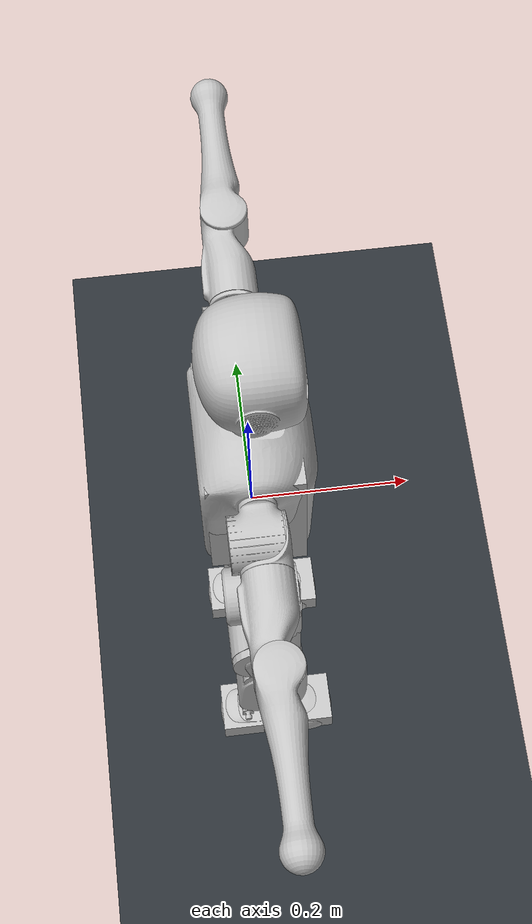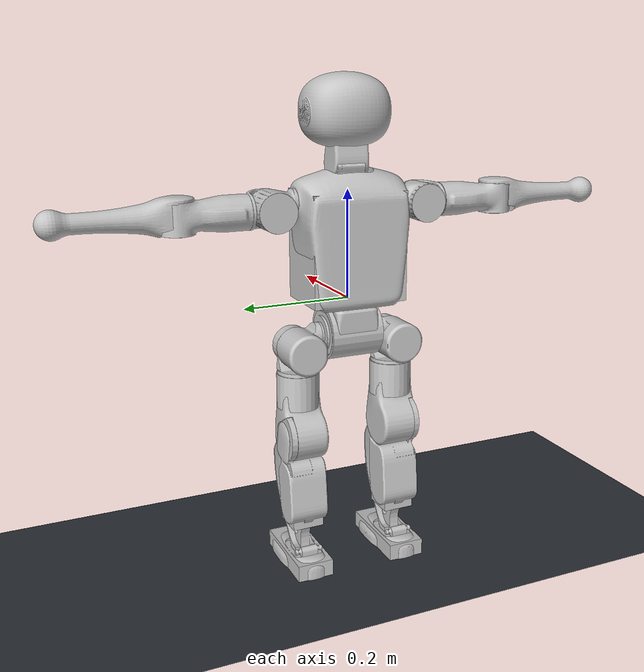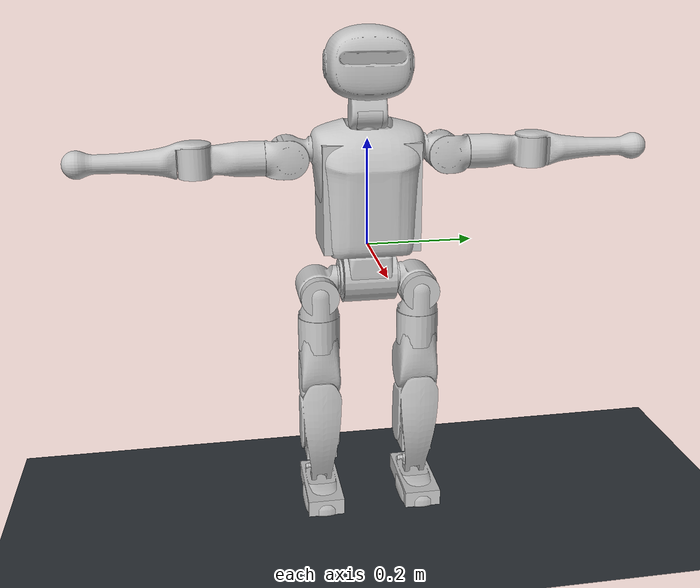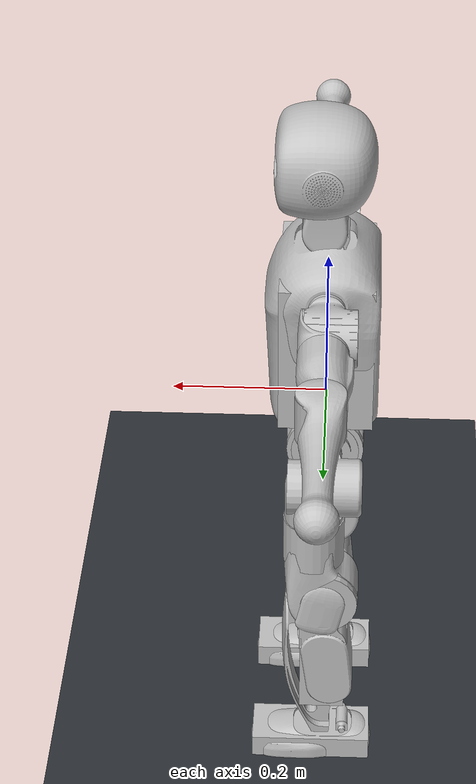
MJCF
<mujoco model="K1">
  <compiler angle="radian" />
  <asset>
    <texture name="booster_k1_skybox" type="skybox" builtin="gradient" rgb1="0.35 0.45 0.60" rgb2="0.02 0.03 0.05" width="512" height="512" />
    <texture name="booster_k1_groundplane" type="2d" builtin="checker" rgb1="0.22 0.24 0.26" rgb2="0.12 0.14 0.16" mark="edge" markrgb="0.8 0.8 0.8" width="512" height="512" />
    <material name="booster_k1_groundplane" texture="booster_k1_groundplane" texuniform="true" texrepeat="6 6" reflectance="0.18" />
    <texture type="skybox" builtin="gradient" rgb1="0.3 0.5 0.7" rgb2="0 0 0" width="512" height="3072" />
    <mesh name="Trunk" file="meshes/Trunk.STL" />
    <mesh name="Head_1" file="meshes/Head_1.STL" />
    <mesh name="Head_2" file="meshes/Head_2.STL" />
    <mesh name="Left_Arm_1" file="meshes/Left_Arm_1.STL" />
    <mesh name="Left_Arm_2" file="meshes/Left_Arm_2.STL" />
    <mesh name="Left_Arm_3" file="meshes/Left_Arm_3.STL" />
    <mesh name="Left_Arm_4" file="meshes/Left_Arm_4.STL" />
    <mesh name="Right_Arm_1" file="meshes/Right_Arm_1.STL" />
    <mesh name="Right_Arm_2" file="meshes/Right_Arm_2.STL" />
    <mesh name="Right_Arm_3" file="meshes/Right_Arm_3.STL" />
    <mesh name="Right_Arm_4" file="meshes/Right_Arm_4.STL" />
    <mesh name="Left_Hip_Pitch" file="meshes/Left_Hip_Pitch.STL" />
    <mesh name="Left_Hip_Roll" file="meshes/Left_Hip_Roll.STL" />
    <mesh name="Left_Hip_Yaw" file="meshes/Left_Hip_Yaw.STL" />
    <mesh name="Left_Shank" file="meshes/Left_Shank.STL" />
    <mesh name="Left_Ankle_Cross" file="meshes/Left_Ankle_Cross.STL" />
    <mesh name="Left_Foot" file="meshes/Left_Foot.STL" />
    <mesh name="Right_Hip_Pitch" file="meshes/Right_Hip_Pitch.STL" />
    <mesh name="Right_Hip_Roll" file="meshes/Right_Hip_Roll.STL" />
    <mesh name="Right_Hip_Yaw" file="meshes/Right_Hip_Yaw.STL" />
    <mesh name="Right_Shank" file="meshes/Right_Shank.STL" />
    <mesh name="Right_Ankle_Cross" file="meshes/Right_Ankle_Cross.STL" />
    <mesh name="Right_Foot" file="meshes/Right_Foot.STL" />
    </asset>
  <worldbody>
    <geom name="booster_k1_floor" type="plane" pos="0 0 -0.525586" size="0 0 0.01" material="booster_k1_groundplane" contype="1" conaffinity="0" condim="3" friction="1 0.005 0.0001" />
    <light name="booster_k1_key_light" pos="0 -2 3" dir="0 1 -1.5" diffuse="0.8 0.8 0.8" specular="0.25 0.25 0.25" />
    <light name="booster_k1_fill_light" pos="1.5 1.5 2" dir="-1 -1 -1" diffuse="0.35 0.35 0.35" specular="0.05 0.05 0.05" />
    <light pos="0 0 5" dir="0 0 -1" directional="true" castshadow="false" diffuse="0.4 0.4 0.4" specular="0.1 0.1 0.1" />
    <light pos="0 0 4" dir="0 0 -1" directional="true" diffuse="0.6 0.6 0.6" specular="0.2 0.2 0.2" />
    <body name="Trunk">
      <inertial pos="-0.0043392 -0.00065534 0.065686" quat="0.999896 -0.00411546 0.0137413 -0.00168959" mass="6.3921" diaginertia="0.0962166 0.0895166 0.0201248" />
      <joint name="world_joint" type="free" limited="false" actuatorfrclimited="false" />
      <geom type="mesh" contype="0" conaffinity="0" group="1" density="0" rgba="0.75294 0.75294 0.75294 1" mesh="Trunk" />
      <geom size="0.06 0.09 0.1" pos="0 0 0.1" type="box" rgba="0.75294 0.75294 0.75294 1" />
      <geom size="0.05 0.05" pos="0 0 -0.06" quat="0.707105 0.707108 0 0" type="cylinder" rgba="0.75294 0.75294 0.75294 1" />
      <site name="imu" pos="0 0 0" size="0.01" />
      <body name="Head_1" pos="0.0056 0 0.2149">
        <inertial pos="-0.00069503 -0.00038527 0.031688" quat="0.993827 -0.00957801 0.00894723 -0.110168" mass="0.29729" diaginertia="0.000429546 0.000420659 0.000125795" />
        <joint name="AAHead_yaw" pos="0 0 0" axis="0 0 1" range="-1 1" armature="0.002" />
        <geom type="mesh" contype="0" conaffinity="0" group="1" density="0" rgba="0.75294 0.75294 0.75294 1" mesh="Head_1" />
        <geom type="mesh" rgba="0.75294 0.75294 0.75294 1" mesh="Head_1" />
        <body name="Head_2" pos="0 0 0.033">
          <inertial pos="0.011042 -0.00092871 0.080698" quat="0.996402 -0.00118413 -0.0779414 -0.0332651" mass="0.61387" diaginertia="0.00603249 0.00577511 0.0017024" />
          <joint name="Head_pitch" pos="0 0 0" axis="0 1 0" range="-0.349 0.855" armature="0.002" />
          <geom type="mesh" contype="0" conaffinity="0" group="1" density="0" rgba="0.75294 0.75294 0.75294 1" mesh="Head_2" />
          <geom type="mesh" rgba="0.75294 0.75294 0.75294 1" mesh="Head_2" />
          </body>
        </body>
      <body name="Left_Arm_1" pos="0 0.077 0.1845">
        <inertial pos="-0.002701 0.062383 -0.011965" quat="0.578658 0.689818 -0.347436 0.261905" mass="0.45628" diaginertia="0.00223871 0.00217107 0.000254225" />
        <joint name="ALeft_Shoulder_Pitch" pos="0 0 0" axis="0 1 0" range="-3.316 1.22" armature="0.05" />
        <geom type="mesh" contype="0" conaffinity="0" group="1" density="0" rgba="0.75294 0.75294 0.75294 1" mesh="Left_Arm_1" />
        <body name="Left_Arm_2" pos="0.0025 0.068 -0.0135">
          <inertial pos="0.01729 0.018221 -4.329e-05" quat="0.413453 0.573635 -0.413453 0.573635" mass="0.084303" diaginertia="0.000113 9.5e-05 6.5e-05" />
          <joint name="Left_Shoulder_Roll" pos="0 0 0" axis="1 0 0" range="-1.74 1.57" />
          <geom type="mesh" contype="0" conaffinity="0" group="1" density="0" rgba="0.75294 0.75294 0.75294 1" mesh="Left_Arm_2" />
          <geom size="0.035 0.034" pos="-0.007 0 0" quat="0.707105 0 0.707108 0" type="cylinder" rgba="0.75294 0.75294 0.75294 1" />
          <body name="Left_Arm_3" pos="0 0.044428 0">
            <inertial pos="-0.0003979 0.072617 -0.00066218" quat="0.679502 0.689551 0.177403 -0.176989" mass="0.76208" diaginertia="0.00606947 0.00606767 0.000385851" />
            <joint name="Left_Elbow_Pitch" pos="0 0 0" axis="0 1 0" range="-2.27 2.27" armature="0.05" />
            <geom type="mesh" contype="0" conaffinity="0" group="1" density="0" rgba="0.75294 0.75294 0.75294 1" mesh="Left_Arm_3" />
            <geom type="mesh" rgba="0.75294 0.75294 0.75294 1" mesh="Left_Arm_3" />
            <body name="left_hand_link" pos="0 0.1215 0">
              <inertial pos="-0.0015751 0.084637 0.0087033" quat="0.712106 0.700961 0.0264125 -0.0293496" mass="0.16796" diaginertia="0.00205619 0.00202933 8.1482e-05" />
              <joint name="Left_Elbow_Yaw" pos="0 0 0" axis="0 0 1" range="-2.44 0" />
              <geom type="mesh" contype="0" conaffinity="0" group="1" density="0" rgba="0.75294 0.75294 0.75294 1" mesh="Left_Arm_4" />
              <geom type="mesh" rgba="0.75294 0.75294 0.75294 1" mesh="Left_Arm_4" />
              </body>
            </body>
          </body>
        </body>
      <body name="Right_Arm_1" pos="0 -0.077 0.1845">
        <inertial pos="-0.0026302 -0.06251 -0.01199" quat="0.689302 0.577958 -0.263425 0.348475" mass="0.45669" diaginertia="0.00224439 0.00217742 0.000255199" />
        <joint name="ARight_Shoulder_Pitch" pos="0 0 0" axis="0 1 0" range="-3.316 1.22" armature="0.05" />
        <geom type="mesh" contype="0" conaffinity="0" group="1" density="0" rgba="0.75294 0.75294 0.75294 1" mesh="Right_Arm_1" />
        <body name="Right_Arm_2" pos="0.0025 -0.068 -0.0135">
          <inertial pos="0.017229 -0.018428 4.3784e-05" quat="0.573635 0.413453 -0.573635 0.413453" mass="0.083353" diaginertia="0.000113 9.5e-05 6.5e-05" />
          <joint name="Right_Shoulder_Roll" pos="0 0 0" axis="1 0 0" range="-1.57 1.74" />
          <geom type="mesh" contype="0" conaffinity="0" group="1" density="0" rgba="0.75294 0.75294 0.75294 1" mesh="Right_Arm_2" />
          <geom size="0.035 0.034" pos="-0.007 0 0" quat="0.707105 0 0.707108 0" type="cylinder" rgba="0.75294 0.75294 0.75294 1" />
          <body name="Right_Arm_3" pos="0 -0.044428 0">
            <inertial pos="-0.00039919 -0.072601 -0.00065629" quat="0.689551 0.679502 0.176989 -0.177403" mass="0.76234" diaginertia="0.00607047 0.00606867 0.000386851" />
            <joint name="Right_Elbow_Pitch" pos="0 0 0" axis="0 1 0" range="-2.27 2.27" armature="0.05" />
            <geom type="mesh" contype="0" conaffinity="0" group="1" density="0" rgba="0.75294 0.75294 0.75294 1" mesh="Right_Arm_3" />
            <geom type="mesh" rgba="0.75294 0.75294 0.75294 1" mesh="Right_Arm_3" />
            <body name="right_hand_link" pos="0 -0.1215 0">
              <inertial pos="-0.0015177 -0.084536 0.0086733" quat="0.700925 0.712091 0.0296562 -0.0274245" mass="0.16828" diaginertia="0.00205618 0.00203032 8.14943e-05" />
              <joint name="Right_Elbow_Yaw" pos="0 0 0" axis="0 0 1" range="0 2.44" />
              <geom type="mesh" contype="0" conaffinity="0" group="1" density="0" rgba="0.75294 0.75294 0.75294 1" mesh="Right_Arm_4" />
              <geom type="mesh" rgba="0.75294 0.75294 0.75294 1" mesh="Right_Arm_4" />
              </body>
            </body>
          </body>
        </body>
      <body name="Left_Hip_Pitch" pos="0 0.096 -0.062">
        <inertial pos="-0.010093 -0.0019934 -0.024713" quat="0.704206 -0.178798 -0.198986 0.65767" mass="0.64068" diaginertia="0.000987585 0.000880963 0.000503452" />
        <joint name="Left_Hip_Pitch" pos="0 0 0" axis="0 1 0" range="-3 2.21" />
        <geom type="mesh" contype="0" conaffinity="0" group="1" density="0" rgba="0.75294 0.75294 0.75294 1" mesh="Left_Hip_Pitch" />
        <body name="Left_Hip_Roll" pos="0 0 -0.026">
          <inertial pos="0.023585 4.9e-05 -0.024996" quat="0.677218 0.203412 0.203412 0.677218" mass="0.127825" diaginertia="0.000262 0.000222694 0.000118306" />
          <joint name="Left_Hip_Roll" pos="0 0 0" axis="1 0 0" range="-0.4 1.57" />
          <geom type="mesh" contype="0" conaffinity="0" group="1" density="0" rgba="0.75294 0.75294 0.75294 1" mesh="Left_Hip_Roll" />
          <geom size="0.036 0.047" quat="0.707105 0 0.707108 0" type="cylinder" rgba="0.75294 0.75294 0.75294 1" />
          <body name="Left_Hip_Yaw" pos="0.012 0 -0.0485">
            <inertial pos="-0.0084744 -0.0040494 -0.087906" quat="0.857995 -0.00590801 -0.0582713 0.510308" mass="1.5591" diaginertia="0.0162716 0.0158564 0.00134895" />
            <joint name="Left_Hip_Yaw" pos="0 0 0" axis="0 0 1" range="-1 1" />
            <geom type="mesh" contype="0" conaffinity="0" group="1" density="0" rgba="0.75294 0.75294 0.75294 1" mesh="Left_Hip_Yaw" />
            <geom size="0.04 0.033" pos="0 0 -0.03" type="cylinder" rgba="0.75294 0.75294 0.75294 1" />
            <body name="Left_Shank" pos="-0.014 0 -0.117">
              <inertial pos="-0.00081083 0.0031459 -0.10922" quat="0.940563 -0.00388906 -0.00385774 0.339574" mass="1.48333" diaginertia="0.0237114 0.0236423 0.00123731" />
              <joint name="Left_Knee_Pitch" pos="0 0 0" axis="0 1 0" range="0 2.23" />
              <geom type="mesh" contype="0" conaffinity="0" group="1" density="0" rgba="0.75294 0.75294 0.75294 1" mesh="Left_Shank" />
              <geom size="0.045 0.035" quat="0.707105 0.707108 0 0" type="cylinder" rgba="0.75294 0.75294 0.75294 1" />
              <geom size="0.03 0.03 0.05" pos="0 0 -0.13" type="box" rgba="0.75294 0.75294 0.75294 1" />
              <body name="Left_Ankle_Cross" pos="0.00019706 0.0002 -0.24519">
                <inertial pos="0 0 0" quat="0.5 0.5 0.5 0.5" mass="0.038836" diaginertia="4e-06 4e-06 2e-06" />
                <joint name="Left_Ankle_Pitch" pos="0 0 0" axis="0 1 0" range="-0.87 0.345" armature="0.05" />
                <geom type="mesh" contype="0" conaffinity="0" group="1" density="0" rgba="0.75294 0.75294 0.75294 1" mesh="Left_Ankle_Cross" />
                <body name="left_foot_link">
                  <inertial pos="7.3589e-05 -4.1141e-06 -0.0075032" quat="0 0.674609 0 0.738175" mass="0.38305" diaginertia="0.000789779 0.000741 0.000197221" />
                  <joint name="Left_Ankle_Roll" pos="0 0 0" axis="1 0 0" range="-0.345 0.345" armature="0.05" />
                  <geom type="mesh" contype="0" conaffinity="0" group="1" density="0" rgba="0.75294 0.75294 0.75294 1" mesh="Left_Foot" />
                  <geom size="0.08 0.035 0.016" pos="0.014 0 -0.008" type="box" rgba="0.75294 0.75294 0.75294 1" />
                  </body>
                </body>
              </body>
            </body>
          </body>
        </body>
      <body name="Right_Hip_Pitch" pos="0 -0.096 -0.062">
        <inertial pos="-0.010065 0.0020086 -0.024739" quat="0.656712 -0.199052 -0.176963 0.705544" mass="0.6413" diaginertia="0.000988671 0.000880749 0.00050458" />
        <joint name="Right_Hip_Pitch" pos="0 0 0" axis="0 1 0" range="-3 2.21" />
        <geom type="mesh" contype="0" conaffinity="0" group="1" density="0" rgba="0.75294 0.75294 0.75294 1" mesh="Right_Hip_Pitch" />
        <body name="Right_Hip_Roll" pos="0 0 -0.026">
          <inertial pos="0.023585 4.9e-05 -0.024996" quat="0.677218 0.203412 0.203412 0.677218" mass="0.127825" diaginertia="0.000262 0.000222694 0.000118306" />
          <joint name="Right_Hip_Roll" pos="0 0 0" axis="1 0 0" range="-1.57 0.4" />
          <geom type="mesh" contype="0" conaffinity="0" group="1" density="0" rgba="0.75294 0.75294 0.75294 1" mesh="Right_Hip_Roll" />
          <geom size="0.036 0.047" quat="0.707105 0 0.707108 0" type="cylinder" rgba="0.75294 0.75294 0.75294 1" />
          <body name="Right_Hip_Yaw" pos="0.012 0 -0.0485">
            <inertial pos="-0.008475 0.0040392 -0.087906" quat="0.510308 -0.0582713 -0.00590801 0.857995" mass="1.5592" diaginertia="0.0162716 0.0158564 0.00134895" />
            <joint name="Right_Hip_Yaw" pos="0 0 0" axis="0 0 1" range="-1 1" />
            <geom type="mesh" contype="0" conaffinity="0" group="1" density="0" rgba="0.75294 0.75294 0.75294 1" mesh="Right_Hip_Yaw" />
            <geom size="0.04 0.033" pos="0 0 -0.03" type="cylinder" rgba="0.75294 0.75294 0.75294 1" />
            <body name="Right_Shank" pos="-0.014 0 -0.117">
              <inertial pos="-0.000805 -0.003146 -0.109215" quat="0.940537 0.00388176 -0.00383651 -0.339646" mass="1.48334" diaginertia="0.0237114 0.0236423 0.00123733" />
              <joint name="Right_Knee_Pitch" pos="0 0 0" axis="0 1 0" range="0 2.23" />
              <geom type="mesh" contype="0" conaffinity="0" group="1" density="0" rgba="0.75294 0.75294 0.75294 1" mesh="Right_Shank" />
              <geom size="0.045 0.035" quat="0.707105 0.707108 0 0" type="cylinder" rgba="0.75294 0.75294 0.75294 1" />
              <geom size="0.03 0.03 0.05" pos="0 0 -0.13" type="box" rgba="0.75294 0.75294 0.75294 1" />
              <body name="Right_Ankle_Cross" pos="0.00019706 -0.0002 -0.24519">
                <inertial pos="0 0 0" quat="0.5 0.5 0.5 0.5" mass="0.038836" diaginertia="4e-06 4e-06 2e-06" />
                <joint name="Right_Ankle_Pitch" pos="0 0 0" axis="0 1 0" range="-0.87 0.345" armature="0.05" />
                <geom type="mesh" contype="0" conaffinity="0" group="1" density="0" rgba="0.75294 0.75294 0.75294 1" mesh="Right_Ankle_Cross" />
                <body name="right_foot_link">
                  <inertial pos="-0.000178 -2e-06 -0.007291" quat="0 0.674109 0 0.738632" mass="0.38637" diaginertia="0.000794943 0.000745 0.000200057" />
                  <joint name="Right_Ankle_Roll" pos="0 0 0" axis="1 0 0" range="-0.345 0.345" armature="0.05" />
                  <geom type="mesh" contype="0" conaffinity="0" group="1" density="0" rgba="0.75294 0.75294 0.75294 1" mesh="Right_Foot" />
                  <geom size="0.08 0.035 0.016" pos="0.014 0 -0.008" type="box" rgba="0.75294 0.75294 0.75294 1" />
                  </body>
                </body>
              </body>
            </body>
          </body>
        </body>
      </body>
    </worldbody>
  <actuator>
    <general name="AAHead_yaw" joint="AAHead_yaw" forcerange="-7 7" />
    <general name="Head_pitch" joint="Head_pitch" forcerange="-7 7" />
    <general name="ALeft_Shoulder_Pitch" joint="ALeft_Shoulder_Pitch" forcerange="-10 10" />
    <general name="Left_Shoulder_Roll" joint="Left_Shoulder_Roll" forcerange="-10 10" />
    <general name="Left_Elbow_Pitch" joint="Left_Elbow_Pitch" forcerange="-10 10" />
    <general name="Left_Elbow_Yaw" joint="Left_Elbow_Yaw" forcerange="-10 10" />
    <general name="ARight_Shoulder_Pitch" joint="ARight_Shoulder_Pitch" forcerange="-10 10" />
    <general name="Right_Shoulder_Roll" joint="Right_Shoulder_Roll" forcerange="-10 10" />
    <general name="Right_Elbow_Pitch" joint="Right_Elbow_Pitch" forcerange="-10 10" />
    <general name="Right_Elbow_Yaw" joint="Right_Elbow_Yaw" forcerange="-10 10" />
    <general name="Left_Hip_Pitch" joint="Left_Hip_Pitch" forcerange="-45 45" />
    <general name="Left_Hip_Roll" joint="Left_Hip_Roll" forcerange="-30 30" />
    <general name="Left_Hip_Yaw" joint="Left_Hip_Yaw" forcerange="-30 30" />
    <general name="Left_Knee_Pitch" joint="Left_Knee_Pitch" forcerange="-45 45" />
    <general name="Left_Ankle_Pitch" joint="Left_Ankle_Pitch" forcerange="-20 20" />
    <general name="Left_Ankle_Roll" joint="Left_Ankle_Roll" forcerange="-20 20" />
    <general name="Right_Hip_Pitch" joint="Right_Hip_Pitch" forcerange="-45 45" />
    <general name="Right_Hip_Roll" joint="Right_Hip_Roll" forcerange="-30 30" />
    <general name="Right_Hip_Yaw" joint="Right_Hip_Yaw" forcerange="-30 30" />
    <general name="Right_Knee_Pitch" joint="Right_Knee_Pitch" forcerange="-45 45" />
    <general name="Right_Ankle_Pitch" joint="Right_Ankle_Pitch" forcerange="-20 20" />
    <general name="Right_Ankle_Roll" joint="Right_Ankle_Roll" forcerange="-20 20" />
    </actuator>
  <sensor>
    <framequat objtype="site" objname="imu" name="orientation" noise="0.001" />
    <gyro site="imu" name="angular-velocity" noise="0.005" />
    </sensor>
  </mujoco>
